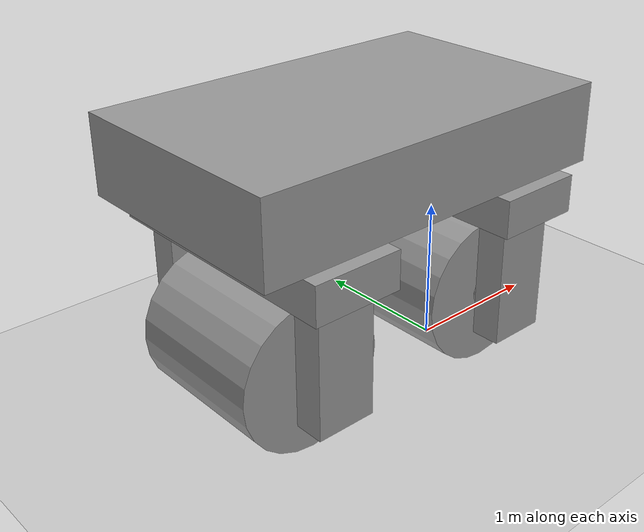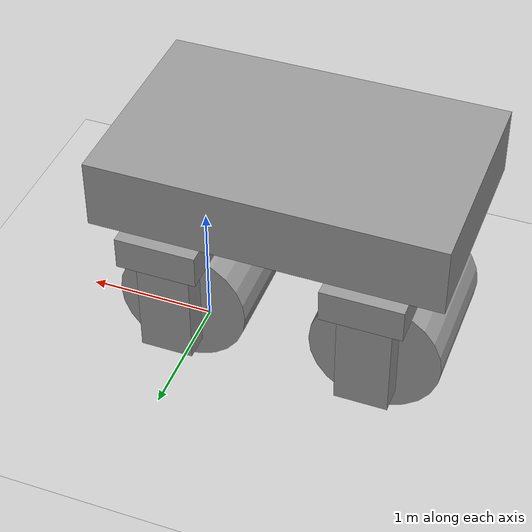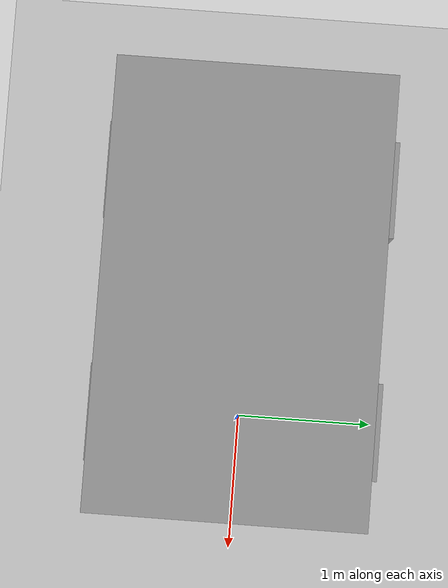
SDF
<sdf version="1.6">
 <world name="default">
  <light name="sun" type="directional">
   <pose>0 0 10 0 -0 0</pose>
   <diffuse>0.8 0.8 0.8 1</diffuse>
   <specular>0.2 0.2 0.2 1</specular>
   <attenuation>
    <range>1000</range>
    <constant>0.9</constant>
    <linear>0.01</linear>
    <quadratic>0.001</quadratic>
   </attenuation>
   <direction>-0.5 0.1 -0.9</direction>
  </light>
  <model name="ground_plane">
   <static>1</static>
   <link name="link">
    <collision name="collision">
     <geometry><plane><normal>0 0 1</normal><size>100 100</size></plane></geometry>
     <surface><friction><ode><mu>100</mu><mu2>50</mu2></ode></friction></surface>
    </collision>
    <visual name="visual">
     <cast_shadows>0</cast_shadows>
     <geometry><plane><normal>0 0 1</normal><size>100 100</size></plane></geometry>
     <material>
      <script><uri>file://media/materials/scripts/gazebo.material</uri><name>Gazebo/Grey</name></script>
     </material>
    </visual>
   </link>
  </model>
  <gravity>0 0 -9.8</gravity>
  <magnetic_field>6e-06 2.3e-05 -4.2e-05</magnetic_field>
  <atmosphere type="adiabatic"/>
  <physics name="default_physics" default="0" type="ode">
   <max_step_size>0.001</max_step_size>
   <real_time_factor>1</real_time_factor>
   <real_time_update_rate>1000</real_time_update_rate>
   <ode>
    <solver><type>quick</type><iters>200</iters><sor>1.2</sor></solver>
    <constraints><erp>0.01</erp></constraints>
   </ode>
  </physics>
  <scene><ambient>0.4 0.4 0.4 1</ambient><background>0.7 0.7 0.7 1</background><shadows>1</shadows></scene>
  <spherical_coordinates>
   <surface_model>EARTH_WGS84</surface_model>
   <latitude_deg>0</latitude_deg>
   <longitude_deg>0</longitude_deg>
   <elevation>0</elevation>
   <heading_deg>0</heading_deg>
  </spherical_coordinates>
  <model name="Suspension_Test_One">
   <link name="link_0">
    <inertial>
     <mass>1</mass>
     <inertia><ixx>0.145833</ixx><ixy>0</ixy><ixz>0</ixz><iyy>0.145833</iyy><iyz>0</iyz><izz>0.125</izz></inertia>
    </inertial>
    <pose>-1.5 0 -0.25 1.5708 -0 0</pose>
    <visual name="visual">
     <geometry><cylinder><radius>0.5</radius><length>1</length></cylinder></geometry>
     <material>
      <lighting>1</lighting>
      <script><uri>file://media/materials/scripts/gazebo.material</uri><name>Gazebo/Grey</name></script>
      <shader type="vertex"><normal_map>__default__</normal_map></shader>
      <ambient>0.3 0.3 0.3 1</ambient>
      <diffuse>0.7 0.7 0.7 1</diffuse>
      <specular>0.01 0.01 0.01 1</specular>
      <emissive>0 0 0 1</emissive>
     </material>
    </visual>
    <collision name="collision">
     <geometry><cylinder><radius>0.5</radius><length>1</length></cylinder></geometry>
     <surface>
      <friction>
       <ode><mu>1</mu><mu2>1</mu2><fdir1>0 0 0</fdir1><slip1>0</slip1><slip2>0</slip2></ode>
       <torsional>
        <coefficient>1</coefficient>
        <patch_radius>0</patch_radius>
        <surface_radius>0</surface_radius>
        <use_patch_radius>1</use_patch_radius>
        <ode><slip>0</slip></ode>
       </torsional>
      </friction>
      <bounce><restitution_coefficient>0</restitution_coefficient><threshold>1e+06</threshold></bounce>
      <contact>
       <collide_without_contact>0</collide_without_contact>
       <collide_without_contact_bitmask>1</collide_without_contact_bitmask>
       <collide_bitmask>1</collide_bitmask>
       <ode>
        <soft_cfm>0</soft_cfm>
        <soft_erp>0.2</soft_erp>
        <kp>1e+13</kp>
        <kd>1</kd>
        <max_vel>0.01</max_vel>
        <min_depth>0</min_depth>
       </ode>
       <bullet>
        <split_impulse>1</split_impulse>
        <split_impulse_penetration_threshold>-0.01</split_impulse_penetration_threshold>
        <soft_cfm>0</soft_cfm>
        <soft_erp>0.2</soft_erp>
        <kp>1e+13</kp>
        <kd>1</kd>
       </bullet>
      </contact>
     </surface>
    </collision>
   </link>
   <link name="link_0_0">
    <inertial>
     <mass>200.668</mass>
     <inertia><ixx>47.8268</ixx><ixy>0</ixy><ixz>0</ixz><iyy>116.708</iyy><iyz>0</iyz><izz>155.3</izz></inertia>
    </inertial>
    <pose>-0.75 0 0.887739 0 -0 0</pose>
    <visual name="visual">
     <geometry><box><size>2.58902 1.60746 0.525479</size></box></geometry>
     <material>
      <lighting>1</lighting>
      <script><uri>file://media/materials/scripts/gazebo.material</uri><name>Gazebo/Grey</name></script>
      <shader type="vertex"><normal_map>__default__</normal_map></shader>
      <ambient>0.3 0.3 0.3 1</ambient>
      <diffuse>0.7 0.7 0.7 1</diffuse>
      <specular>0.01 0.01 0.01 1</specular>
      <emissive>0 0 0 1</emissive>
     </material>
    </visual>
    <collision name="collision">
     <geometry><box><size>2.58902 1.60746 0.525479</size></box></geometry>
     <surface>
      <friction>
       <ode><mu>1</mu><mu2>1</mu2><fdir1>0 0 0</fdir1><slip1>0</slip1><slip2>0</slip2></ode>
       <torsional>
        <coefficient>1</coefficient>
        <patch_radius>0</patch_radius>
        <surface_radius>0</surface_radius>
        <use_patch_radius>1</use_patch_radius>
        <ode><slip>0</slip></ode>
       </torsional>
      </friction>
      <bounce><restitution_coefficient>0</restitution_coefficient><threshold>1e+06</threshold></bounce>
      <contact>
       <collide_without_contact>0</collide_without_contact>
       <collide_without_contact_bitmask>1</collide_without_contact_bitmask>
       <collide_bitmask>1</collide_bitmask>
       <ode>
        <soft_cfm>0</soft_cfm>
        <soft_erp>0.2</soft_erp>
        <kp>1e+13</kp>
        <kd>1</kd>
        <max_vel>0.01</max_vel>
        <min_depth>0</min_depth>
       </ode>
       <bullet>
        <split_impulse>1</split_impulse>
        <split_impulse_penetration_threshold>-0.01</split_impulse_penetration_threshold>
        <soft_cfm>0</soft_cfm>
        <soft_erp>0.2</soft_erp>
        <kp>1e+13</kp>
        <kd>1</kd>
       </bullet>
      </contact>
     </surface>
    </collision>
   </link>
   <link name="link_0_clone">
    <inertial>
     <mass>0.1</mass>
     <inertia>
      <ixx>0.0165833</ixx>
      <ixy>0</ixy>
      <ixz>0</ixz>
      <iyy>0.0165833</iyy>
      <iyz>0</iyz>
      <izz>0.0005</izz>
     </inertia>
    </inertial>
    <pose>-1.5 0 -0.25 1.5708 -0 0</pose>
    <visual name="visual">
     <geometry><cylinder><radius>0.1</radius><length>1.4</length></cylinder></geometry>
     <material>
      <lighting>1</lighting>
      <script><uri>file://media/materials/scripts/gazebo.material</uri><name>Gazebo/Grey</name></script>
      <shader type="vertex"><normal_map>__default__</normal_map></shader>
      <ambient>0.3 0.3 0.3 1</ambient>
      <diffuse>0.7 0.7 0.7 1</diffuse>
      <specular>0.01 0.01 0.01 1</specular>
      <emissive>0 0 0 1</emissive>
     </material>
    </visual>
    <collision name="collision">
     <geometry><cylinder><radius>0.1</radius><length>1.4</length></cylinder></geometry>
     <surface>
      <friction>
       <ode><mu>1</mu><mu2>1</mu2><fdir1>0 0 0</fdir1><slip1>0</slip1><slip2>0</slip2></ode>
       <torsional>
        <coefficient>1</coefficient>
        <patch_radius>0</patch_radius>
        <surface_radius>0</surface_radius>
        <use_patch_radius>1</use_patch_radius>
        <ode><slip>0</slip></ode>
       </torsional>
      </friction>
      <bounce><restitution_coefficient>0</restitution_coefficient><threshold>1e+06</threshold></bounce>
      <contact>
       <collide_without_contact>0</collide_without_contact>
       <collide_without_contact_bitmask>1</collide_without_contact_bitmask>
       <collide_bitmask>1</collide_bitmask>
       <ode>
        <soft_cfm>0</soft_cfm>
        <soft_erp>0.2</soft_erp>
        <kp>1e+13</kp>
        <kd>1</kd>
        <max_vel>0.01</max_vel>
        <min_depth>0</min_depth>
       </ode>
       <bullet>
        <split_impulse>1</split_impulse>
        <split_impulse_penetration_threshold>-0.01</split_impulse_penetration_threshold>
        <soft_cfm>0</soft_cfm>
        <soft_erp>0.2</soft_erp>
        <kp>1e+13</kp>
        <kd>1</kd>
       </bullet>
      </contact>
     </surface>
    </collision>
   </link>
   <link name="link_0_clone_0">
    <inertial>
     <mass>1</mass>
     <inertia><ixx>0.145833</ixx><ixy>0</ixy><ixz>0</ixz><iyy>0.145833</iyy><iyz>0</iyz><izz>0.125</izz></inertia>
    </inertial>
    <pose>-0.002655 -0.002655 -0.25 1.5708 -0 0</pose>
    <visual name="visual">
     <geometry><cylinder><radius>0.5</radius><length>1</length></cylinder></geometry>
     <material>
      <lighting>1</lighting>
      <script><uri>file://media/materials/scripts/gazebo.material</uri><name>Gazebo/Grey</name></script>
      <shader type="vertex"><normal_map>__default__</normal_map></shader>
      <ambient>0.3 0.3 0.3 1</ambient>
      <diffuse>0.7 0.7 0.7 1</diffuse>
      <specular>0.01 0.01 0.01 1</specular>
      <emissive>0 0 0 1</emissive>
     </material>
    </visual>
    <collision name="collision">
     <geometry><cylinder><radius>0.5</radius><length>1</length></cylinder></geometry>
     <surface>
      <friction>
       <ode><mu>1</mu><mu2>1</mu2><fdir1>0 0 0</fdir1><slip1>0</slip1><slip2>0</slip2></ode>
       <torsional>
        <coefficient>1</coefficient>
        <patch_radius>0</patch_radius>
        <surface_radius>0</surface_radius>
        <use_patch_radius>1</use_patch_radius>
        <ode><slip>0</slip></ode>
       </torsional>
      </friction>
      <bounce><restitution_coefficient>0</restitution_coefficient><threshold>1e+06</threshold></bounce>
      <contact>
       <collide_without_contact>0</collide_without_contact>
       <collide_without_contact_bitmask>1</collide_without_contact_bitmask>
       <collide_bitmask>1</collide_bitmask>
       <ode>
        <soft_cfm>0</soft_cfm>
        <soft_erp>0.2</soft_erp>
        <kp>1e+13</kp>
        <kd>1</kd>
        <max_vel>0.01</max_vel>
        <min_depth>0</min_depth>
       </ode>
       <bullet>
        <split_impulse>1</split_impulse>
        <split_impulse_penetration_threshold>-0.01</split_impulse_penetration_threshold>
        <soft_cfm>0</soft_cfm>
        <soft_erp>0.2</soft_erp>
        <kp>1e+13</kp>
        <kd>1</kd>
       </bullet>
      </contact>
     </surface>
    </collision>
   </link>
   <link name="link_0_clone_clone">
    <inertial>
     <mass>0.1</mass>
     <inertia>
      <ixx>0.0165833</ixx>
      <ixy>0</ixy>
      <ixz>0</ixz>
      <iyy>0.0165833</iyy>
      <iyz>0</iyz>
      <izz>0.0005</izz>
     </inertia>
    </inertial>
    <pose>0 0 -0.25 1.5708 -0 0</pose>
    <visual name="visual">
     <geometry><cylinder><radius>0.1</radius><length>1.4</length></cylinder></geometry>
     <material>
      <lighting>1</lighting>
      <script><uri>file://media/materials/scripts/gazebo.material</uri><name>Gazebo/Grey</name></script>
      <shader type="vertex"><normal_map>__default__</normal_map></shader>
      <ambient>0.3 0.3 0.3 1</ambient>
      <diffuse>0.7 0.7 0.7 1</diffuse>
      <specular>0.01 0.01 0.01 1</specular>
      <emissive>0 0 0 1</emissive>
     </material>
    </visual>
    <collision name="collision">
     <geometry><cylinder><radius>0.1</radius><length>1.4</length></cylinder></geometry>
     <surface>
      <friction>
       <ode><mu>1</mu><mu2>1</mu2><fdir1>0 0 0</fdir1><slip1>0</slip1><slip2>0</slip2></ode>
       <torsional>
        <coefficient>1</coefficient>
        <patch_radius>0</patch_radius>
        <surface_radius>0</surface_radius>
        <use_patch_radius>1</use_patch_radius>
        <ode><slip>0</slip></ode>
       </torsional>
      </friction>
      <bounce><restitution_coefficient>0</restitution_coefficient><threshold>1e+06</threshold></bounce>
      <contact>
       <collide_without_contact>0</collide_without_contact>
       <collide_without_contact_bitmask>1</collide_without_contact_bitmask>
       <collide_bitmask>1</collide_bitmask>
       <ode>
        <soft_cfm>0</soft_cfm>
        <soft_erp>0.2</soft_erp>
        <kp>1e+13</kp>
        <kd>1</kd>
        <max_vel>0.01</max_vel>
        <min_depth>0</min_depth>
       </ode>
       <bullet>
        <split_impulse>1</split_impulse>
        <split_impulse_penetration_threshold>-0.01</split_impulse_penetration_threshold>
        <soft_cfm>0</soft_cfm>
        <soft_erp>0.2</soft_erp>
        <kp>1e+13</kp>
        <kd>1</kd>
       </bullet>
      </contact>
     </surface>
    </collision>
   </link>
   <link name="link_2">
    <inertial>
     <mass>0.2</mass>
     <inertia>
      <ixx>0.0173333</ixx>
      <ixy>0</ixy>
      <ixz>0</ixz>
      <iyy>0.0193333</iyy>
      <iyz>0</iyz>
      <izz>0.00333333</izz>
     </inertia>
    </inertial>
    <pose>-1.5 -0.7 0.05 0 -0 0</pose>
    <visual name="visual">
     <geometry><box><size>0.4 0.2 1</size></box></geometry>
     <material>
      <lighting>1</lighting>
      <script><uri>file://media/materials/scripts/gazebo.material</uri><name>Gazebo/Grey</name></script>
      <shader type="vertex"><normal_map>__default__</normal_map></shader>
      <ambient>0.3 0.3 0.3 1</ambient>
      <diffuse>0.7 0.7 0.7 1</diffuse>
      <specular>0.01 0.01 0.01 1</specular>
      <emissive>0 0 0 1</emissive>
     </material>
    </visual>
    <collision name="collision">
     <geometry><box><size>0.4 0.2 1</size></box></geometry>
     <surface>
      <friction>
       <ode><mu>1</mu><mu2>1</mu2><fdir1>0 0 0</fdir1><slip1>0</slip1><slip2>0</slip2></ode>
       <torsional>
        <coefficient>1</coefficient>
        <patch_radius>0</patch_radius>
        <surface_radius>0</surface_radius>
        <use_patch_radius>1</use_patch_radius>
        <ode><slip>0</slip></ode>
       </torsional>
      </friction>
      <bounce><restitution_coefficient>0</restitution_coefficient><threshold>1e+06</threshold></bounce>
      <contact>
       <collide_without_contact>0</collide_without_contact>
       <collide_without_contact_bitmask>1</collide_without_contact_bitmask>
       <collide_bitmask>1</collide_bitmask>
       <ode>
        <soft_cfm>0</soft_cfm>
        <soft_erp>0.2</soft_erp>
        <kp>1e+13</kp>
        <kd>1</kd>
        <max_vel>0.01</max_vel>
        <min_depth>0</min_depth>
       </ode>
       <bullet>
        <split_impulse>1</split_impulse>
        <split_impulse_penetration_threshold>-0.01</split_impulse_penetration_threshold>
        <soft_cfm>0</soft_cfm>
        <soft_erp>0.2</soft_erp>
        <kp>1e+13</kp>
        <kd>1</kd>
       </bullet>
      </contact>
     </surface>
    </collision>
   </link>
   <link name="link_2_clone">
    <inertial>
     <mass>0.2</mass>
     <inertia>
      <ixx>0.0173333</ixx>
      <ixy>0</ixy>
      <ixz>0</ixz>
      <iyy>0.0193333</iyy>
      <iyz>0</iyz>
      <izz>0.00333333</izz>
     </inertia>
    </inertial>
    <pose>-1.5 0.7 0.05 0 -0 0</pose>
    <visual name="visual">
     <geometry><box><size>0.4 0.2 1</size></box></geometry>
     <material>
      <lighting>1</lighting>
      <script><uri>file://media/materials/scripts/gazebo.material</uri><name>Gazebo/Grey</name></script>
      <shader type="vertex"><normal_map>__default__</normal_map></shader>
      <ambient>0.3 0.3 0.3 1</ambient>
      <diffuse>0.7 0.7 0.7 1</diffuse>
      <specular>0.01 0.01 0.01 1</specular>
      <emissive>0 0 0 1</emissive>
     </material>
    </visual>
    <collision name="collision">
     <geometry><box><size>0.4 0.2 1</size></box></geometry>
     <surface>
      <friction>
       <ode><mu>1</mu><mu2>1</mu2><fdir1>0 0 0</fdir1><slip1>0</slip1><slip2>0</slip2></ode>
       <torsional>
        <coefficient>1</coefficient>
        <patch_radius>0</patch_radius>
        <surface_radius>0</surface_radius>
        <use_patch_radius>1</use_patch_radius>
        <ode><slip>0</slip></ode>
       </torsional>
      </friction>
      <bounce><restitution_coefficient>0</restitution_coefficient><threshold>1e+06</threshold></bounce>
      <contact>
       <collide_without_contact>0</collide_without_contact>
       <collide_without_contact_bitmask>1</collide_without_contact_bitmask>
       <collide_bitmask>1</collide_bitmask>
       <ode>
        <soft_cfm>0</soft_cfm>
        <soft_erp>0.2</soft_erp>
        <kp>1e+13</kp>
        <kd>1</kd>
        <max_vel>0.01</max_vel>
        <min_depth>0</min_depth>
       </ode>
       <bullet>
        <split_impulse>1</split_impulse>
        <split_impulse_penetration_threshold>-0.01</split_impulse_penetration_threshold>
        <soft_cfm>0</soft_cfm>
        <soft_erp>0.2</soft_erp>
        <kp>1e+13</kp>
        <kd>1</kd>
       </bullet>
      </contact>
     </surface>
    </collision>
   </link>
   <link name="link_2_clone_0">
    <inertial>
     <mass>0.2</mass>
     <inertia>
      <ixx>0.0173333</ixx>
      <ixy>0</ixy>
      <ixz>0</ixz>
      <iyy>0.0193333</iyy>
      <iyz>0</iyz>
      <izz>0.00333333</izz>
     </inertia>
    </inertial>
    <pose>0 -0.7 0.05 0 -0 0</pose>
    <visual name="visual">
     <geometry><box><size>0.4 0.2 1</size></box></geometry>
     <material>
      <lighting>1</lighting>
      <script><uri>file://media/materials/scripts/gazebo.material</uri><name>Gazebo/Grey</name></script>
      <shader type="vertex"><normal_map>__default__</normal_map></shader>
      <ambient>0.3 0.3 0.3 1</ambient>
      <diffuse>0.7 0.7 0.7 1</diffuse>
      <specular>0.01 0.01 0.01 1</specular>
      <emissive>0 0 0 1</emissive>
     </material>
    </visual>
    <collision name="collision">
     <geometry><box><size>0.4 0.2 1</size></box></geometry>
     <surface>
      <friction>
       <ode><mu>1</mu><mu2>1</mu2><fdir1>0 0 0</fdir1><slip1>0</slip1><slip2>0</slip2></ode>
       <torsional>
        <coefficient>1</coefficient>
        <patch_radius>0</patch_radius>
        <surface_radius>0</surface_radius>
        <use_patch_radius>1</use_patch_radius>
        <ode><slip>0</slip></ode>
       </torsional>
      </friction>
      <bounce><restitution_coefficient>0</restitution_coefficient><threshold>1e+06</threshold></bounce>
      <contact>
       <collide_without_contact>0</collide_without_contact>
       <collide_without_contact_bitmask>1</collide_without_contact_bitmask>
       <collide_bitmask>1</collide_bitmask>
       <ode>
        <soft_cfm>0</soft_cfm>
        <soft_erp>0.2</soft_erp>
        <kp>1e+13</kp>
        <kd>1</kd>
        <max_vel>0.01</max_vel>
        <min_depth>0</min_depth>
       </ode>
       <bullet>
        <split_impulse>1</split_impulse>
        <split_impulse_penetration_threshold>-0.01</split_impulse_penetration_threshold>
        <soft_cfm>0</soft_cfm>
        <soft_erp>0.2</soft_erp>
        <kp>1e+13</kp>
        <kd>1</kd>
       </bullet>
      </contact>
     </surface>
    </collision>
   </link>
   <link name="link_2_clone_clone">
    <inertial>
     <mass>0.2</mass>
     <inertia>
      <ixx>0.0173333</ixx>
      <ixy>0</ixy>
      <ixz>0</ixz>
      <iyy>0.0193333</iyy>
      <iyz>0</iyz>
      <izz>0.00333333</izz>
     </inertia>
    </inertial>
    <pose>0 0.7 0.05 0 -0 0</pose>
    <visual name="visual">
     <geometry><box><size>0.4 0.2 1</size></box></geometry>
     <material>
      <lighting>1</lighting>
      <script><uri>file://media/materials/scripts/gazebo.material</uri><name>Gazebo/Grey</name></script>
      <shader type="vertex"><normal_map>__default__</normal_map></shader>
      <ambient>0.3 0.3 0.3 1</ambient>
      <diffuse>0.7 0.7 0.7 1</diffuse>
      <specular>0.01 0.01 0.01 1</specular>
      <emissive>0 0 0 1</emissive>
     </material>
    </visual>
    <collision name="collision">
     <geometry><box><size>0.4 0.2 1</size></box></geometry>
     <surface>
      <friction>
       <ode><mu>1</mu><mu2>1</mu2><fdir1>0 0 0</fdir1><slip1>0</slip1><slip2>0</slip2></ode>
       <torsional>
        <coefficient>1</coefficient>
        <patch_radius>0</patch_radius>
        <surface_radius>0</surface_radius>
        <use_patch_radius>1</use_patch_radius>
        <ode><slip>0</slip></ode>
       </torsional>
      </friction>
      <bounce><restitution_coefficient>0</restitution_coefficient><threshold>1e+06</threshold></bounce>
      <contact>
       <collide_without_contact>0</collide_without_contact>
       <collide_without_contact_bitmask>1</collide_without_contact_bitmask>
       <collide_bitmask>1</collide_bitmask>
       <ode>
        <soft_cfm>0</soft_cfm>
        <soft_erp>0.2</soft_erp>
        <kp>1e+13</kp>
        <kd>1</kd>
        <max_vel>0.01</max_vel>
        <min_depth>0</min_depth>
       </ode>
       <bullet>
        <split_impulse>1</split_impulse>
        <split_impulse_penetration_threshold>-0.01</split_impulse_penetration_threshold>
        <soft_cfm>0</soft_cfm>
        <soft_erp>0.2</soft_erp>
        <kp>1e+13</kp>
        <kd>1</kd>
       </bullet>
      </contact>
     </surface>
    </collision>
   </link>
   <link name="link_3">
    <inertial>
     <mass>1.12889</mass>
     <inertia>
      <ixx>0.327432</ixx>
      <ixy>0</ixy>
      <ixz>0</ixz>
      <iyy>0.0397465</iyy>
      <iyz>0</iyz>
      <izz>0.355419</izz>
     </inertia>
    </inertial>
    <pose>-1.5 0 0.5 0 -0 0</pose>
    <visual name="visual">
     <geometry><box><size>0.6 1.8 0.25</size></box></geometry>
     <material>
      <lighting>1</lighting>
      <script><uri>file://media/materials/scripts/gazebo.material</uri><name>Gazebo/Grey</name></script>
      <shader type="vertex"><normal_map>__default__</normal_map></shader>
      <ambient>0.3 0.3 0.3 1</ambient>
      <diffuse>0.7 0.7 0.7 1</diffuse>
      <specular>0.01 0.01 0.01 1</specular>
      <emissive>0 0 0 1</emissive>
     </material>
    </visual>
    <collision name="collision">
     <geometry><box><size>0.6 1.8 0.25</size></box></geometry>
     <surface>
      <friction>
       <ode><mu>1</mu><mu2>1</mu2><fdir1>0 0 0</fdir1><slip1>0</slip1><slip2>0</slip2></ode>
       <torsional>
        <coefficient>1</coefficient>
        <patch_radius>0</patch_radius>
        <surface_radius>0</surface_radius>
        <use_patch_radius>1</use_patch_radius>
        <ode><slip>0</slip></ode>
       </torsional>
      </friction>
      <bounce><restitution_coefficient>0</restitution_coefficient><threshold>1e+06</threshold></bounce>
      <contact>
       <collide_without_contact>0</collide_without_contact>
       <collide_without_contact_bitmask>1</collide_without_contact_bitmask>
       <collide_bitmask>1</collide_bitmask>
       <ode>
        <soft_cfm>0</soft_cfm>
        <soft_erp>0.2</soft_erp>
        <kp>1e+13</kp>
        <kd>1</kd>
        <max_vel>0.01</max_vel>
        <min_depth>0</min_depth>
       </ode>
       <bullet>
        <split_impulse>1</split_impulse>
        <split_impulse_penetration_threshold>-0.01</split_impulse_penetration_threshold>
        <soft_cfm>0</soft_cfm>
        <soft_erp>0.2</soft_erp>
        <kp>1e+13</kp>
        <kd>1</kd>
       </bullet>
      </contact>
     </surface>
    </collision>
   </link>
   <link name="link_3_clone">
    <inertial>
     <mass>1.12889</mass>
     <inertia>
      <ixx>0.327432</ixx>
      <ixy>0</ixy>
      <ixz>0</ixz>
      <iyy>0.0397465</iyy>
      <iyz>0</iyz>
      <izz>0.355419</izz>
     </inertia>
    </inertial>
    <pose>0 0 0.5 0 -0 0</pose>
    <visual name="visual">
     <geometry><box><size>0.6 1.8 0.25</size></box></geometry>
     <material>
      <lighting>1</lighting>
      <script><uri>file://media/materials/scripts/gazebo.material</uri><name>Gazebo/Grey</name></script>
      <shader type="vertex"><normal_map>__default__</normal_map></shader>
      <ambient>0.3 0.3 0.3 1</ambient>
      <diffuse>0.7 0.7 0.7 1</diffuse>
      <specular>0.01 0.01 0.01 1</specular>
      <emissive>0 0 0 1</emissive>
     </material>
    </visual>
    <collision name="collision">
     <geometry><box><size>0.6 1.8 0.25</size></box></geometry>
     <surface>
      <friction>
       <ode><mu>1</mu><mu2>1</mu2><fdir1>0 0 0</fdir1><slip1>0</slip1><slip2>0</slip2></ode>
       <torsional>
        <coefficient>1</coefficient>
        <patch_radius>0</patch_radius>
        <surface_radius>0</surface_radius>
        <use_patch_radius>1</use_patch_radius>
        <ode><slip>0</slip></ode>
       </torsional>
      </friction>
      <bounce><restitution_coefficient>0</restitution_coefficient><threshold>1e+06</threshold></bounce>
      <contact>
       <collide_without_contact>0</collide_without_contact>
       <collide_without_contact_bitmask>1</collide_without_contact_bitmask>
       <collide_bitmask>1</collide_bitmask>
       <ode>
        <soft_cfm>0</soft_cfm>
        <soft_erp>0.2</soft_erp>
        <kp>1e+13</kp>
        <kd>1</kd>
        <max_vel>0.01</max_vel>
        <min_depth>0</min_depth>
       </ode>
       <bullet>
        <split_impulse>1</split_impulse>
        <split_impulse_penetration_threshold>-0.01</split_impulse_penetration_threshold>
        <soft_cfm>0</soft_cfm>
        <soft_erp>0.2</soft_erp>
        <kp>1e+13</kp>
        <kd>1</kd>
       </bullet>
      </contact>
     </surface>
    </collision>
   </link>
   <joint name="link_0_0_JOINT_0" type="prismatic">
    <parent>link_0_0</parent>
    <child>link_3</child>
    <axis>
     <xyz>0 0 1</xyz>
     <use_parent_model_frame>0</use_parent_model_frame>
     <limit>
      <lower>-1.79769e+308</lower>
      <upper>1.79769e+308</upper>
      <effort>-1</effort>
      <velocity>-1</velocity>
     </limit>
     <dynamics>
      <spring_reference>0</spring_reference>
      <spring_stiffness>40000</spring_stiffness>
      <damping>1000</damping>
      <friction>0</friction>
     </dynamics>
    </axis>
    <physics>
     <ode><limit><cfm>0</cfm><erp>0.2</erp></limit><suspension><cfm>0</cfm><erp>0.2</erp></suspension></ode>
    </physics>
    <sensor name="Sensor_sus_1" type="force_torque">
     <update_rate>30</update_rate>
     <always_on>true</always_on>
     <topic>/sus/sensor/s1</topic>
     <visualize>true</visualize>
     <force_torque><frame>sensor</frame><measure_direction>parent_to_child</measure_direction></force_torque>
    </sensor>
   </joint>
   <joint name="link_0_0_JOINT_1" type="prismatic">
    <parent>link_0_0</parent>
    <child>link_3_clone</child>
    <axis>
     <xyz>0 0 1</xyz>
     <use_parent_model_frame>0</use_parent_model_frame>
     <limit>
      <lower>-1.79769e+308</lower>
      <upper>1.79769e+308</upper>
      <effort>-1</effort>
      <velocity>-1</velocity>
     </limit>
     <dynamics>
      <spring_reference>0</spring_reference>
      <spring_stiffness>40000</spring_stiffness>
      <damping>1000</damping>
      <friction>0</friction>
     </dynamics>
    </axis>
    <physics>
     <ode><limit><cfm>0</cfm><erp>0.2</erp></limit><suspension><cfm>0</cfm><erp>0.2</erp></suspension></ode>
    </physics>
    <sensor name="Sensor_sus_2" type="force_torque">
     <update_rate>30</update_rate>
     <always_on>true</always_on>
     <topic>/sus/sensor/s2</topic>
     <visualize>true</visualize>
     <force_torque><frame>sensor</frame><measure_direction>parent_to_child</measure_direction></force_torque>
    </sensor>
   </joint>
   <joint name="link_0_clone_JOINT_4" type="revolute">
    <parent>link_0_clone</parent>
    <child>link_0</child>
    <axis>
     <xyz>0 0 1</xyz>
     <use_parent_model_frame>0</use_parent_model_frame>
     <limit>
      <lower>-1.79769e+308</lower>
      <upper>1.79769e+308</upper>
      <effort>-1</effort>
      <velocity>-1</velocity>
     </limit>
     <dynamics>
      <spring_reference>0</spring_reference>
      <spring_stiffness>0</spring_stiffness>
      <damping>0</damping>
      <friction>0</friction>
     </dynamics>
    </axis>
    <physics>
     <ode><limit><cfm>0</cfm><erp>0.2</erp></limit><suspension><cfm>0</cfm><erp>0.2</erp></suspension></ode>
    </physics>
   </joint>
   <joint name="link_0_clone_clone_JOINT_9" type="revolute">
    <parent>link_0_clone_clone</parent>
    <child>link_0_clone_0</child>
    <axis>
     <xyz>0 0 1</xyz>
     <use_parent_model_frame>0</use_parent_model_frame>
     <limit>
      <lower>-1.79769e+308</lower>
      <upper>1.79769e+308</upper>
      <effort>-1</effort>
      <velocity>-1</velocity>
     </limit>
     <dynamics>
      <spring_reference>0</spring_reference>
      <spring_stiffness>0</spring_stiffness>
      <damping>0</damping>
      <friction>0</friction>
     </dynamics>
    </axis>
    <physics>
     <ode><limit><cfm>0</cfm><erp>0.2</erp></limit><suspension><cfm>0</cfm><erp>0.2</erp></suspension></ode>
    </physics>
   </joint>
   <joint name="link_2_JOINT_2" type="fixed">
    <parent>link_2</parent>
    <child>link_0_clone</child>
    <physics>
     <ode><limit><cfm>0</cfm><erp>0.2</erp></limit><suspension><cfm>0</cfm><erp>0.2</erp></suspension></ode>
    </physics>
   </joint>
   <joint name="link_2_clone_0_JOINT_7" type="fixed">
    <parent>link_2_clone_0</parent>
    <child>link_0_clone_clone</child>
    <physics>
     <ode><limit><cfm>0</cfm><erp>0.2</erp></limit><suspension><cfm>0</cfm><erp>0.2</erp></suspension></ode>
    </physics>
   </joint>
   <joint name="link_2_clone_JOINT_3" type="fixed">
    <parent>link_2_clone</parent>
    <child>link_0_clone</child>
    <physics>
     <ode><limit><cfm>0</cfm><erp>0.2</erp></limit><suspension><cfm>0</cfm><erp>0.2</erp></suspension></ode>
    </physics>
   </joint>
   <joint name="link_2_clone_clone_JOINT_8" type="fixed">
    <parent>link_2_clone_clone</parent>
    <child>link_0_clone_clone</child>
    <physics>
     <ode><limit><cfm>0</cfm><erp>0.2</erp></limit><suspension><cfm>0</cfm><erp>0.2</erp></suspension></ode>
    </physics>
   </joint>
   <joint name="link_3_JOINT_0" type="fixed">
    <parent>link_3</parent>
    <child>link_2</child>
    <physics>
     <ode><limit><cfm>0</cfm><erp>0.2</erp></limit><suspension><cfm>0</cfm><erp>0.2</erp></suspension></ode>
    </physics>
   </joint>
   <joint name="link_3_JOINT_1" type="fixed">
    <parent>link_3</parent>
    <child>link_2_clone</child>
    <physics>
     <ode><limit><cfm>0</cfm><erp>0.2</erp></limit><suspension><cfm>0</cfm><erp>0.2</erp></suspension></ode>
    </physics>
   </joint>
   <joint name="link_3_clone_JOINT_5" type="fixed">
    <parent>link_3_clone</parent>
    <child>link_2_clone_0</child>
    <physics>
     <ode><limit><cfm>0</cfm><erp>0.2</erp></limit><suspension><cfm>0</cfm><erp>0.2</erp></suspension></ode>
    </physics>
   </joint>
   <joint name="link_3_clone_JOINT_6" type="fixed">
    <parent>link_3_clone</parent>
    <child>link_2_clone_clone</child>
    <physics>
     <ode><limit><cfm>0</cfm><erp>0.2</erp></limit><suspension><cfm>0</cfm><erp>0.2</erp></suspension></ode>
    </physics>
   </joint>
   <static>0</static>
   <pose>0 0 0.8 0 -0 0</pose>
  </model>
 </world>
</sdf>
